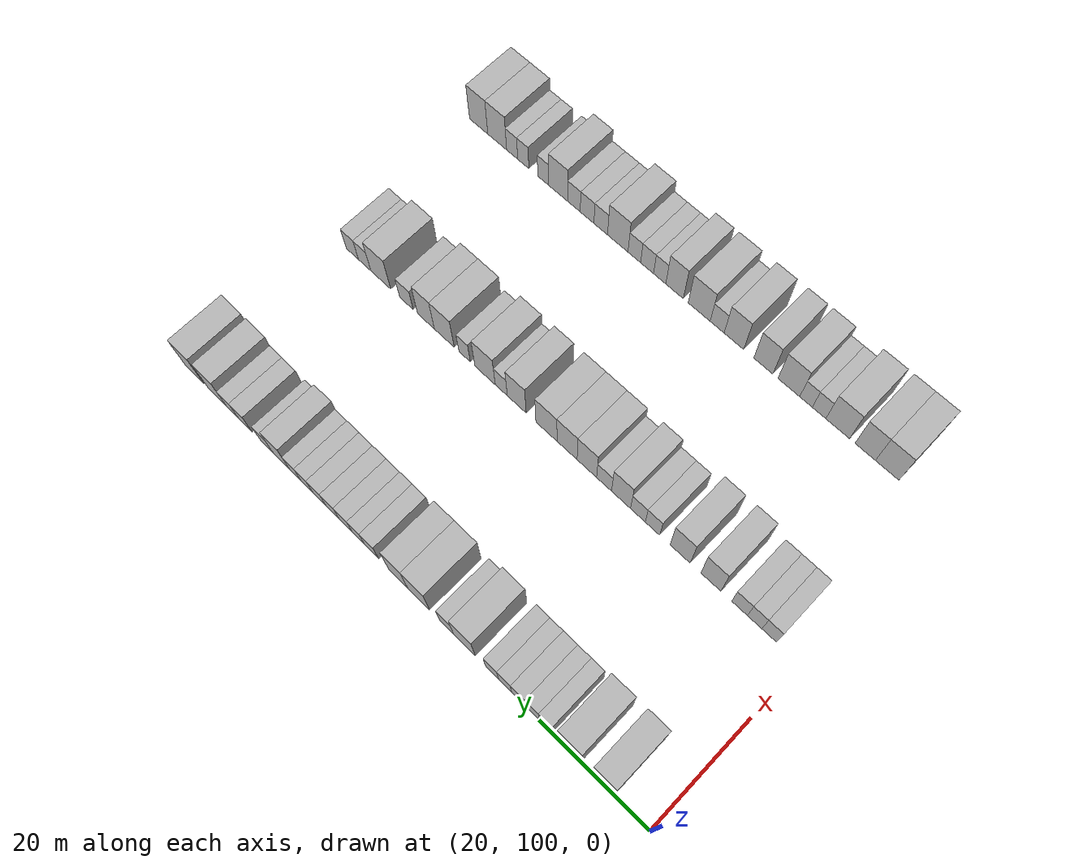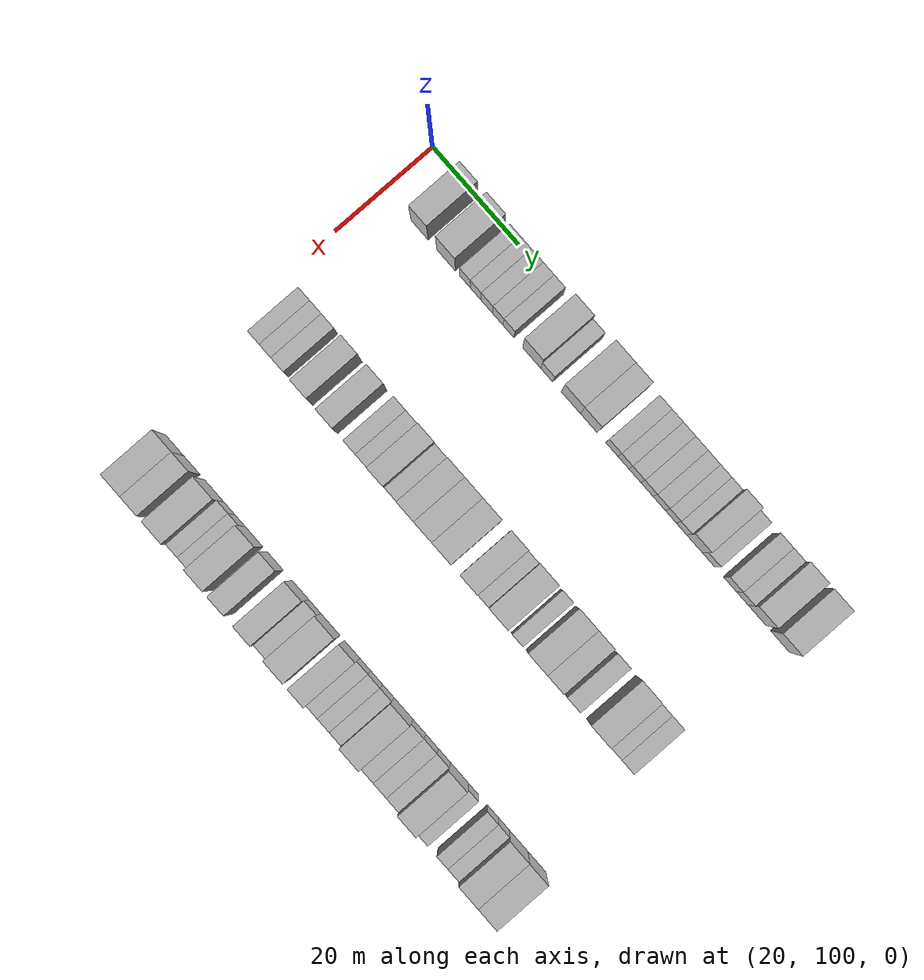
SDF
<sdf version="1.6">
 <world name="default">
  <model name="building_98">
   <static>1</static>
   <pose>25.0000 108.4100 0 0.000000 0.000000 0.000000</pose>
   <link name="link">
    <pose>0 0 4.50 0 0 0</pose>
    <collision name="collision"><geometry><box><size>10.0000 4.0163 9.0000</size></box></geometry></collision>
    <visual name="visual">
     <cast_shadows>0</cast_shadows>
     <geometry><box><size>10.0000 4.0163 9.0000</size></box></geometry>
     <material>
      <script>
       <uri>model://HANNAS_wall/materials/scripts</uri>
       <uri>model://HANNAS_wall/materials/textures</uri>
       <name>vrc/HANNAS_wall</name>
      </script>
     </material>
    </visual>
   </link>
  </model>
  <model name="building_99">
   <static>1</static>
   <pose>25.0000 114.5897 0 0.000000 0.000000 0.000000</pose>
   <link name="link">
    <pose>0 0 4.50 0 0 0</pose>
    <collision name="collision"><geometry><box><size>10.0000 4.3430 9.0000</size></box></geometry></collision>
    <visual name="visual">
     <cast_shadows>0</cast_shadows>
     <geometry><box><size>10.0000 4.3430 9.0000</size></box></geometry>
     <material>
      <script>
       <uri>model://HANNAS_wall/materials/scripts</uri>
       <uri>model://HANNAS_wall/materials/textures</uri>
       <name>vrc/HANNAS_wall</name>
      </script>
     </material>
    </visual>
   </link>
  </model>
  <model name="building_100">
   <static>1</static>
   <pose>25.0000 118.9897 0 0.000000 0.000000 0.000000</pose>
   <link name="link">
    <pose>0 0 3.00 0 0 0</pose>
    <collision name="collision"><geometry><box><size>10.0000 2.4570 6.0000</size></box></geometry></collision>
    <visual name="visual">
     <cast_shadows>0</cast_shadows>
     <geometry><box><size>10.0000 2.4570 6.0000</size></box></geometry>
     <material>
      <script>
       <uri>model://HANNAS_wall/materials/scripts</uri>
       <uri>model://HANNAS_wall/materials/textures</uri>
       <name>vrc/HANNAS_wall</name>
      </script>
     </material>
    </visual>
   </link>
  </model>
  <model name="building_101">
   <static>1</static>
   <pose>25.0000 121.4669 0 0.000000 0.000000 0.000000</pose>
   <link name="link">
    <pose>0 0 3.00 0 0 0</pose>
    <collision name="collision"><geometry><box><size>10.0000 2.4974 6.0000</size></box></geometry></collision>
    <visual name="visual">
     <cast_shadows>0</cast_shadows>
     <geometry><box><size>10.0000 2.4974 6.0000</size></box></geometry>
     <material>
      <script>
       <uri>model://HANNAS_wall/materials/scripts</uri>
       <uri>model://HANNAS_wall/materials/textures</uri>
       <name>vrc/HANNAS_wall</name>
      </script>
     </material>
    </visual>
   </link>
  </model>
  <model name="building_102">
   <static>1</static>
   <pose>25.0000 124.0393 0 0.000000 0.000000 0.000000</pose>
   <link name="link">
    <pose>0 0 3.00 0 0 0</pose>
    <collision name="collision"><geometry><box><size>10.0000 2.6474 6.0000</size></box></geometry></collision>
    <visual name="visual">
     <cast_shadows>0</cast_shadows>
     <geometry><box><size>10.0000 2.6474 6.0000</size></box></geometry>
     <material>
      <script>
       <uri>model://HANNAS_wall/materials/scripts</uri>
       <uri>model://HANNAS_wall/materials/textures</uri>
       <name>vrc/HANNAS_wall</name>
      </script>
     </material>
    </visual>
   </link>
  </model>
  <model name="building_103">
   <static>1</static>
   <pose>25.0000 126.6178 0 0.000000 0.000000 0.000000</pose>
   <link name="link">
    <pose>0 0 3.00 0 0 0</pose>
    <collision name="collision"><geometry><box><size>10.0000 2.5097 6.0000</size></box></geometry></collision>
    <visual name="visual">
     <cast_shadows>0</cast_shadows>
     <geometry><box><size>10.0000 2.5097 6.0000</size></box></geometry>
     <material>
      <script>
       <uri>model://HANNAS_wall/materials/scripts</uri>
       <uri>model://HANNAS_wall/materials/textures</uri>
       <name>vrc/HANNAS_wall</name>
      </script>
     </material>
    </visual>
   </link>
  </model>
  <model name="building_104">
   <static>1</static>
   <pose>25.0000 129.1347 0 0.000000 0.000000 0.000000</pose>
   <link name="link">
    <pose>0 0 3.00 0 0 0</pose>
    <collision name="collision"><geometry><box><size>10.0000 2.5240 6.0000</size></box></geometry></collision>
    <visual name="visual">
     <cast_shadows>0</cast_shadows>
     <geometry><box><size>10.0000 2.5240 6.0000</size></box></geometry>
     <material>
      <script>
       <uri>model://HANNAS_wall/materials/scripts</uri>
       <uri>model://HANNAS_wall/materials/textures</uri>
       <name>vrc/HANNAS_wall</name>
      </script>
     </material>
    </visual>
   </link>
  </model>
  <model name="building_105">
   <static>1</static>
   <pose>25.0000 134.5163 0 0.000000 0.000000 0.000000</pose>
   <link name="link">
    <pose>0 0 4.50 0 0 0</pose>
    <collision name="collision"><geometry><box><size>10.0000 4.2393 9.0000</size></box></geometry></collision>
    <visual name="visual">
     <cast_shadows>0</cast_shadows>
     <geometry><box><size>10.0000 4.2393 9.0000</size></box></geometry>
     <material>
      <script>
       <uri>model://HANNAS_wall/materials/scripts</uri>
       <uri>model://HANNAS_wall/materials/textures</uri>
       <name>vrc/HANNAS_wall</name>
      </script>
     </material>
    </visual>
   </link>
  </model>
  <model name="building_106">
   <static>1</static>
   <pose>25.0000 138.0238 0 0.000000 0.000000 0.000000</pose>
   <link name="link">
    <pose>0 0 3.00 0 0 0</pose>
    <collision name="collision"><geometry><box><size>10.0000 2.7756 6.0000</size></box></geometry></collision>
    <visual name="visual">
     <cast_shadows>0</cast_shadows>
     <geometry><box><size>10.0000 2.7756 6.0000</size></box></geometry>
     <material>
      <script>
       <uri>model://HANNAS_wall/materials/scripts</uri>
       <uri>model://HANNAS_wall/materials/textures</uri>
       <name>vrc/HANNAS_wall</name>
      </script>
     </material>
    </visual>
   </link>
  </model>
  <model name="building_107">
   <static>1</static>
   <pose>25.0000 143.6234 0 0.000000 0.000000 0.000000</pose>
   <link name="link">
    <pose>0 0 4.50 0 0 0</pose>
    <collision name="collision"><geometry><box><size>10.0000 4.4236 9.0000</size></box></geometry></collision>
    <visual name="visual">
     <cast_shadows>0</cast_shadows>
     <geometry><box><size>10.0000 4.4236 9.0000</size></box></geometry>
     <material>
      <script>
       <uri>model://HANNAS_wall/materials/scripts</uri>
       <uri>model://HANNAS_wall/materials/textures</uri>
       <name>vrc/HANNAS_wall</name>
      </script>
     </material>
    </visual>
   </link>
  </model>
  <model name="building_108">
   <static>1</static>
   <pose>25.0000 147.7853 0 0.000000 0.000000 0.000000</pose>
   <link name="link">
    <pose>0 0 4.50 0 0 0</pose>
    <collision name="collision"><geometry><box><size>10.0000 3.9002 9.0000</size></box></geometry></collision>
    <visual name="visual">
     <cast_shadows>0</cast_shadows>
     <geometry><box><size>10.0000 3.9002 9.0000</size></box></geometry>
     <material>
      <script>
       <uri>model://HANNAS_wall/materials/scripts</uri>
       <uri>model://HANNAS_wall/materials/textures</uri>
       <name>vrc/HANNAS_wall</name>
      </script>
     </material>
    </visual>
   </link>
  </model>
  <model name="building_109">
   <static>1</static>
   <pose>25.0000 153.1432 0 0.000000 0.000000 0.000000</pose>
   <link name="link">
    <pose>0 0 3.00 0 0 0</pose>
    <collision name="collision"><geometry><box><size>10.0000 2.8157 6.0000</size></box></geometry></collision>
    <visual name="visual">
     <cast_shadows>0</cast_shadows>
     <geometry><box><size>10.0000 2.8157 6.0000</size></box></geometry>
     <material>
      <script>
       <uri>model://HANNAS_wall/materials/scripts</uri>
       <uri>model://HANNAS_wall/materials/textures</uri>
       <name>vrc/HANNAS_wall</name>
      </script>
     </material>
    </visual>
   </link>
  </model>
  <model name="building_110">
   <static>1</static>
   <pose>25.0000 155.8075 0 0.000000 0.000000 0.000000</pose>
   <link name="link">
    <pose>0 0 3.00 0 0 0</pose>
    <collision name="collision"><geometry><box><size>10.0000 2.5129 6.0000</size></box></geometry></collision>
    <visual name="visual">
     <cast_shadows>0</cast_shadows>
     <geometry><box><size>10.0000 2.5129 6.0000</size></box></geometry>
     <material>
      <script>
       <uri>model://HANNAS_wall/materials/scripts</uri>
       <uri>model://HANNAS_wall/materials/textures</uri>
       <name>vrc/HANNAS_wall</name>
      </script>
     </material>
    </visual>
   </link>
  </model>
  <model name="building_111">
   <static>1</static>
   <pose>25.0000 158.4557 0 0.000000 0.000000 0.000000</pose>
   <link name="link">
    <pose>0 0 3.00 0 0 0</pose>
    <collision name="collision"><geometry><box><size>10.0000 2.7835 6.0000</size></box></geometry></collision>
    <visual name="visual">
     <cast_shadows>0</cast_shadows>
     <geometry><box><size>10.0000 2.7835 6.0000</size></box></geometry>
     <material>
      <script>
       <uri>model://HANNAS_wall/materials/scripts</uri>
       <uri>model://HANNAS_wall/materials/textures</uri>
       <name>vrc/HANNAS_wall</name>
      </script>
     </material>
    </visual>
   </link>
  </model>
  <model name="building_112">
   <static>1</static>
   <pose>25.0000 161.2477 0 0.000000 0.000000 0.000000</pose>
   <link name="link">
    <pose>0 0 3.00 0 0 0</pose>
    <collision name="collision"><geometry><box><size>10.0000 2.8004 6.0000</size></box></geometry></collision>
    <visual name="visual">
     <cast_shadows>0</cast_shadows>
     <geometry><box><size>10.0000 2.8004 6.0000</size></box></geometry>
     <material>
      <script>
       <uri>model://HANNAS_wall/materials/scripts</uri>
       <uri>model://HANNAS_wall/materials/textures</uri>
       <name>vrc/HANNAS_wall</name>
      </script>
     </material>
    </visual>
   </link>
  </model>
  <model name="building_113">
   <static>1</static>
   <pose>25.0000 164.0514 0 0.000000 0.000000 0.000000</pose>
   <link name="link">
    <pose>0 0 3.00 0 0 0</pose>
    <collision name="collision"><geometry><box><size>10.0000 2.8071 6.0000</size></box></geometry></collision>
    <visual name="visual">
     <cast_shadows>0</cast_shadows>
     <geometry><box><size>10.0000 2.8071 6.0000</size></box></geometry>
     <material>
      <script>
       <uri>model://HANNAS_wall/materials/scripts</uri>
       <uri>model://HANNAS_wall/materials/textures</uri>
       <name>vrc/HANNAS_wall</name>
      </script>
     </material>
    </visual>
   </link>
  </model>
  <model name="building_114">
   <static>1</static>
   <pose>25.0000 166.7304 0 0.000000 0.000000 0.000000</pose>
   <link name="link">
    <pose>0 0 3.00 0 0 0</pose>
    <collision name="collision"><geometry><box><size>10.0000 2.5507 6.0000</size></box></geometry></collision>
    <visual name="visual">
     <cast_shadows>0</cast_shadows>
     <geometry><box><size>10.0000 2.5507 6.0000</size></box></geometry>
     <material>
      <script>
       <uri>model://HANNAS_wall/materials/scripts</uri>
       <uri>model://HANNAS_wall/materials/textures</uri>
       <name>vrc/HANNAS_wall</name>
      </script>
     </material>
    </visual>
   </link>
  </model>
  <model name="building_115">
   <static>1</static>
   <pose>25.0000 169.2499 0 0.000000 0.000000 0.000000</pose>
   <link name="link">
    <pose>0 0 3.00 0 0 0</pose>
    <collision name="collision"><geometry><box><size>10.0000 2.4883 6.0000</size></box></geometry></collision>
    <visual name="visual">
     <cast_shadows>0</cast_shadows>
     <geometry><box><size>10.0000 2.4883 6.0000</size></box></geometry>
     <material>
      <script>
       <uri>model://HANNAS_wall/materials/scripts</uri>
       <uri>model://HANNAS_wall/materials/textures</uri>
       <name>vrc/HANNAS_wall</name>
      </script>
     </material>
    </visual>
   </link>
  </model>
  <model name="building_116">
   <static>1</static>
   <pose>25.0000 172.3284 0 0.000000 0.000000 0.000000</pose>
   <link name="link">
    <pose>0 0 4.50 0 0 0</pose>
    <collision name="collision"><geometry><box><size>10.0000 3.6687 9.0000</size></box></geometry></collision>
    <visual name="visual">
     <cast_shadows>0</cast_shadows>
     <geometry><box><size>10.0000 3.6687 9.0000</size></box></geometry>
     <material>
      <script>
       <uri>model://HANNAS_wall/materials/scripts</uri>
       <uri>model://HANNAS_wall/materials/textures</uri>
       <name>vrc/HANNAS_wall</name>
      </script>
     </material>
    </visual>
   </link>
  </model>
  <model name="building_117">
   <static>1</static>
   <pose>25.0000 175.5758 0 0.000000 0.000000 0.000000</pose>
   <link name="link">
    <pose>0 0 3.00 0 0 0</pose>
    <collision name="collision"><geometry><box><size>10.0000 2.8261 6.0000</size></box></geometry></collision>
    <visual name="visual">
     <cast_shadows>0</cast_shadows>
     <geometry><box><size>10.0000 2.8261 6.0000</size></box></geometry>
     <material>
      <script>
       <uri>model://HANNAS_wall/materials/scripts</uri>
       <uri>model://HANNAS_wall/materials/textures</uri>
       <name>vrc/HANNAS_wall</name>
      </script>
     </material>
    </visual>
   </link>
  </model>
  <model name="building_118">
   <static>1</static>
   <pose>25.0000 180.4867 0 0.000000 0.000000 0.000000</pose>
   <link name="link">
    <pose>0 0 3.00 0 0 0</pose>
    <collision name="collision"><geometry><box><size>10.0000 2.9957 6.0000</size></box></geometry></collision>
    <visual name="visual">
     <cast_shadows>0</cast_shadows>
     <geometry><box><size>10.0000 2.9957 6.0000</size></box></geometry>
     <material>
      <script>
       <uri>model://HANNAS_wall/materials/scripts</uri>
       <uri>model://HANNAS_wall/materials/textures</uri>
       <name>vrc/HANNAS_wall</name>
      </script>
     </material>
    </visual>
   </link>
  </model>
  <model name="building_119">
   <static>1</static>
   <pose>25.0000 183.3194 0 0.000000 0.000000 0.000000</pose>
   <link name="link">
    <pose>0 0 3.00 0 0 0</pose>
    <collision name="collision"><geometry><box><size>10.0000 2.6698 6.0000</size></box></geometry></collision>
    <visual name="visual">
     <cast_shadows>0</cast_shadows>
     <geometry><box><size>10.0000 2.6698 6.0000</size></box></geometry>
     <material>
      <script>
       <uri>model://HANNAS_wall/materials/scripts</uri>
       <uri>model://HANNAS_wall/materials/textures</uri>
       <name>vrc/HANNAS_wall</name>
      </script>
     </material>
    </visual>
   </link>
  </model>
  <model name="building_120">
   <static>1</static>
   <pose>25.0000 186.7675 0 0.000000 0.000000 0.000000</pose>
   <link name="link">
    <pose>0 0 4.50 0 0 0</pose>
    <collision name="collision"><geometry><box><size>10.0000 4.2265 9.0000</size></box></geometry></collision>
    <visual name="visual">
     <cast_shadows>0</cast_shadows>
     <geometry><box><size>10.0000 4.2265 9.0000</size></box></geometry>
     <material>
      <script>
       <uri>model://HANNAS_wall/materials/scripts</uri>
       <uri>model://HANNAS_wall/materials/textures</uri>
       <name>vrc/HANNAS_wall</name>
      </script>
     </material>
    </visual>
   </link>
  </model>
  <model name="building_121">
   <static>1</static>
   <pose>25.0000 192.0727 0 0.000000 0.000000 0.000000</pose>
   <link name="link">
    <pose>0 0 4.50 0 0 0</pose>
    <collision name="collision"><geometry><box><size>10.0000 4.3840 9.0000</size></box></geometry></collision>
    <visual name="visual">
     <cast_shadows>0</cast_shadows>
     <geometry><box><size>10.0000 4.3840 9.0000</size></box></geometry>
     <material>
      <script>
       <uri>model://HANNAS_wall/materials/scripts</uri>
       <uri>model://HANNAS_wall/materials/textures</uri>
       <name>vrc/HANNAS_wall</name>
      </script>
     </material>
    </visual>
   </link>
  </model>
  <model name="building_232">
   <static>1</static>
   <pose>55.0000 105.4134 0 0.000000 0.000000 0.000000</pose>
   <link name="link">
    <pose>0 0 3.00 0 0 0</pose>
    <collision name="collision"><geometry><box><size>10.0000 2.6427 6.0000</size></box></geometry></collision>
    <visual name="visual">
     <cast_shadows>0</cast_shadows>
     <geometry><box><size>10.0000 2.6427 6.0000</size></box></geometry>
     <material>
      <script>
       <uri>model://HANNAS_wall/materials/scripts</uri>
       <uri>model://HANNAS_wall/materials/textures</uri>
       <name>vrc/HANNAS_wall</name>
      </script>
     </material>
    </visual>
   </link>
  </model>
  <model name="building_233">
   <static>1</static>
   <pose>55.0000 108.0498 0 0.000000 0.000000 0.000000</pose>
   <link name="link">
    <pose>0 0 3.00 0 0 0</pose>
    <collision name="collision"><geometry><box><size>10.0000 2.6302 6.0000</size></box></geometry></collision>
    <visual name="visual">
     <cast_shadows>0</cast_shadows>
     <geometry><box><size>10.0000 2.6302 6.0000</size></box></geometry>
     <material>
      <script>
       <uri>model://HANNAS_wall/materials/scripts</uri>
       <uri>model://HANNAS_wall/materials/textures</uri>
       <name>vrc/HANNAS_wall</name>
      </script>
     </material>
    </visual>
   </link>
  </model>
  <model name="building_234">
   <static>1</static>
   <pose>55.0000 110.8013 0 0.000000 0.000000 0.000000</pose>
   <link name="link">
    <pose>0 0 3.00 0 0 0</pose>
    <collision name="collision"><geometry><box><size>10.0000 2.8726 6.0000</size></box></geometry></collision>
    <visual name="visual">
     <cast_shadows>0</cast_shadows>
     <geometry><box><size>10.0000 2.8726 6.0000</size></box></geometry>
     <material>
      <script>
       <uri>model://HANNAS_wall/materials/scripts</uri>
       <uri>model://HANNAS_wall/materials/textures</uri>
       <name>vrc/HANNAS_wall</name>
      </script>
     </material>
    </visual>
   </link>
  </model>
  <model name="building_235">
   <static>1</static>
   <pose>55.0000 116.0993 0 0.000000 0.000000 0.000000</pose>
   <link name="link">
    <pose>0 0 4.50 0 0 0</pose>
    <collision name="collision"><geometry><box><size>10.0000 3.7235 9.0000</size></box></geometry></collision>
    <visual name="visual">
     <cast_shadows>0</cast_shadows>
     <geometry><box><size>10.0000 3.7235 9.0000</size></box></geometry>
     <material>
      <script>
       <uri>model://HANNAS_wall/materials/scripts</uri>
       <uri>model://HANNAS_wall/materials/textures</uri>
       <name>vrc/HANNAS_wall</name>
      </script>
     </material>
    </visual>
   </link>
  </model>
  <model name="building_236">
   <static>1</static>
   <pose>55.0000 121.8579 0 0.000000 0.000000 0.000000</pose>
   <link name="link">
    <pose>0 0 4.50 0 0 0</pose>
    <collision name="collision"><geometry><box><size>10.0000 3.7937 9.0000</size></box></geometry></collision>
    <visual name="visual">
     <cast_shadows>0</cast_shadows>
     <geometry><box><size>10.0000 3.7937 9.0000</size></box></geometry>
     <material>
      <script>
       <uri>model://HANNAS_wall/materials/scripts</uri>
       <uri>model://HANNAS_wall/materials/textures</uri>
       <name>vrc/HANNAS_wall</name>
      </script>
     </material>
    </visual>
   </link>
  </model>
  <model name="building_237">
   <static>1</static>
   <pose>55.0000 127.1407 0 0.000000 0.000000 0.000000</pose>
   <link name="link">
    <pose>0 0 3.00 0 0 0</pose>
    <collision name="collision"><geometry><box><size>10.0000 2.7717 6.0000</size></box></geometry></collision>
    <visual name="visual">
     <cast_shadows>0</cast_shadows>
     <geometry><box><size>10.0000 2.7717 6.0000</size></box></geometry>
     <material>
      <script>
       <uri>model://HANNAS_wall/materials/scripts</uri>
       <uri>model://HANNAS_wall/materials/textures</uri>
       <name>vrc/HANNAS_wall</name>
      </script>
     </material>
    </visual>
   </link>
  </model>
  <model name="building_238">
   <static>1</static>
   <pose>55.0000 129.9576 0 0.000000 0.000000 0.000000</pose>
   <link name="link">
    <pose>0 0 3.00 0 0 0</pose>
    <collision name="collision"><geometry><box><size>10.0000 2.8621 6.0000</size></box></geometry></collision>
    <visual name="visual">
     <cast_shadows>0</cast_shadows>
     <geometry><box><size>10.0000 2.8621 6.0000</size></box></geometry>
     <material>
      <script>
       <uri>model://HANNAS_wall/materials/scripts</uri>
       <uri>model://HANNAS_wall/materials/textures</uri>
       <name>vrc/HANNAS_wall</name>
      </script>
     </material>
    </visual>
   </link>
  </model>
  <model name="building_239">
   <static>1</static>
   <pose>55.0000 133.2480 0 0.000000 0.000000 0.000000</pose>
   <link name="link">
    <pose>0 0 4.50 0 0 0</pose>
    <collision name="collision"><geometry><box><size>10.0000 3.7188 9.0000</size></box></geometry></collision>
    <visual name="visual">
     <cast_shadows>0</cast_shadows>
     <geometry><box><size>10.0000 3.7188 9.0000</size></box></geometry>
     <material>
      <script>
       <uri>model://HANNAS_wall/materials/scripts</uri>
       <uri>model://HANNAS_wall/materials/textures</uri>
       <name>vrc/HANNAS_wall</name>
      </script>
     </material>
    </visual>
   </link>
  </model>
  <model name="building_240">
   <static>1</static>
   <pose>55.0000 136.5853 0 0.000000 0.000000 0.000000</pose>
   <link name="link">
    <pose>0 0 3.00 0 0 0</pose>
    <collision name="collision"><geometry><box><size>10.0000 2.9558 6.0000</size></box></geometry></collision>
    <visual name="visual">
     <cast_shadows>0</cast_shadows>
     <geometry><box><size>10.0000 2.9558 6.0000</size></box></geometry>
     <material>
      <script>
       <uri>model://HANNAS_wall/materials/scripts</uri>
       <uri>model://HANNAS_wall/materials/textures</uri>
       <name>vrc/HANNAS_wall</name>
      </script>
     </material>
    </visual>
   </link>
  </model>
  <model name="building_241">
   <static>1</static>
   <pose>55.0000 140.0075 0 0.000000 0.000000 0.000000</pose>
   <link name="link">
    <pose>0 0 4.50 0 0 0</pose>
    <collision name="collision"><geometry><box><size>10.0000 3.8885 9.0000</size></box></geometry></collision>
    <visual name="visual">
     <cast_shadows>0</cast_shadows>
     <geometry><box><size>10.0000 3.8885 9.0000</size></box></geometry>
     <material>
      <script>
       <uri>model://HANNAS_wall/materials/scripts</uri>
       <uri>model://HANNAS_wall/materials/textures</uri>
       <name>vrc/HANNAS_wall</name>
      </script>
     </material>
    </visual>
   </link>
  </model>
  <model name="building_242">
   <static>1</static>
   <pose>55.0000 143.9833 0 0.000000 0.000000 0.000000</pose>
   <link name="link">
    <pose>0 0 4.50 0 0 0</pose>
    <collision name="collision"><geometry><box><size>10.0000 4.0633 9.0000</size></box></geometry></collision>
    <visual name="visual">
     <cast_shadows>0</cast_shadows>
     <geometry><box><size>10.0000 4.0633 9.0000</size></box></geometry>
     <material>
      <script>
       <uri>model://HANNAS_wall/materials/scripts</uri>
       <uri>model://HANNAS_wall/materials/textures</uri>
       <name>vrc/HANNAS_wall</name>
      </script>
     </material>
    </visual>
   </link>
  </model>
  <model name="building_243">
   <static>1</static>
   <pose>55.0000 148.1698 0 0.000000 0.000000 0.000000</pose>
   <link name="link">
    <pose>0 0 4.50 0 0 0</pose>
    <collision name="collision"><geometry><box><size>10.0000 4.3097 9.0000</size></box></geometry></collision>
    <visual name="visual">
     <cast_shadows>0</cast_shadows>
     <geometry><box><size>10.0000 4.3097 9.0000</size></box></geometry>
     <material>
      <script>
       <uri>model://HANNAS_wall/materials/scripts</uri>
       <uri>model://HANNAS_wall/materials/textures</uri>
       <name>vrc/HANNAS_wall</name>
      </script>
     </material>
    </visual>
   </link>
  </model>
  <model name="building_244">
   <static>1</static>
   <pose>55.0000 154.2860 0 0.000000 0.000000 0.000000</pose>
   <link name="link">
    <pose>0 0 4.50 0 0 0</pose>
    <collision name="collision"><geometry><box><size>10.0000 3.9227 9.0000</size></box></geometry></collision>
    <visual name="visual">
     <cast_shadows>0</cast_shadows>
     <geometry><box><size>10.0000 3.9227 9.0000</size></box></geometry>
     <material>
      <script>
       <uri>model://HANNAS_wall/materials/scripts</uri>
       <uri>model://HANNAS_wall/materials/textures</uri>
       <name>vrc/HANNAS_wall</name>
      </script>
     </material>
    </visual>
   </link>
  </model>
  <model name="building_245">
   <static>1</static>
   <pose>55.0000 157.5115 0 0.000000 0.000000 0.000000</pose>
   <link name="link">
    <pose>0 0 3.00 0 0 0</pose>
    <collision name="collision"><geometry><box><size>10.0000 2.5282 6.0000</size></box></geometry></collision>
    <visual name="visual">
     <cast_shadows>0</cast_shadows>
     <geometry><box><size>10.0000 2.5282 6.0000</size></box></geometry>
     <material>
      <script>
       <uri>model://HANNAS_wall/materials/scripts</uri>
       <uri>model://HANNAS_wall/materials/textures</uri>
       <name>vrc/HANNAS_wall</name>
      </script>
     </material>
    </visual>
   </link>
  </model>
  <model name="building_246">
   <static>1</static>
   <pose>55.0000 160.9273 0 0.000000 0.000000 0.000000</pose>
   <link name="link">
    <pose>0 0 4.50 0 0 0</pose>
    <collision name="collision"><geometry><box><size>10.0000 4.3035 9.0000</size></box></geometry></collision>
    <visual name="visual">
     <cast_shadows>0</cast_shadows>
     <geometry><box><size>10.0000 4.3035 9.0000</size></box></geometry>
     <material>
      <script>
       <uri>model://HANNAS_wall/materials/scripts</uri>
       <uri>model://HANNAS_wall/materials/textures</uri>
       <name>vrc/HANNAS_wall</name>
      </script>
     </material>
    </visual>
   </link>
  </model>
  <model name="building_247">
   <static>1</static>
   <pose>55.0000 165.2969 0 0.000000 0.000000 0.000000</pose>
   <link name="link">
    <pose>0 0 3.00 0 0 0</pose>
    <collision name="collision"><geometry><box><size>10.0000 2.4358 6.0000</size></box></geometry></collision>
    <visual name="visual">
     <cast_shadows>0</cast_shadows>
     <geometry><box><size>10.0000 2.4358 6.0000</size></box></geometry>
     <material>
      <script>
       <uri>model://HANNAS_wall/materials/scripts</uri>
       <uri>model://HANNAS_wall/materials/textures</uri>
       <name>vrc/HANNAS_wall</name>
      </script>
     </material>
    </visual>
   </link>
  </model>
  <model name="building_248">
   <static>1</static>
   <pose>55.0000 169.6730 0 0.000000 0.000000 0.000000</pose>
   <link name="link">
    <pose>0 0 4.50 0 0 0</pose>
    <collision name="collision"><geometry><box><size>10.0000 4.3163 9.0000</size></box></geometry></collision>
    <visual name="visual">
     <cast_shadows>0</cast_shadows>
     <geometry><box><size>10.0000 4.3163 9.0000</size></box></geometry>
     <material>
      <script>
       <uri>model://HANNAS_wall/materials/scripts</uri>
       <uri>model://HANNAS_wall/materials/textures</uri>
       <name>vrc/HANNAS_wall</name>
      </script>
     </material>
    </visual>
   </link>
  </model>
  <model name="building_249">
   <static>1</static>
   <pose>55.0000 173.6691 0 0.000000 0.000000 0.000000</pose>
   <link name="link">
    <pose>0 0 4.50 0 0 0</pose>
    <collision name="collision"><geometry><box><size>10.0000 3.6759 9.0000</size></box></geometry></collision>
    <visual name="visual">
     <cast_shadows>0</cast_shadows>
     <geometry><box><size>10.0000 3.6759 9.0000</size></box></geometry>
     <material>
      <script>
       <uri>model://HANNAS_wall/materials/scripts</uri>
       <uri>model://HANNAS_wall/materials/textures</uri>
       <name>vrc/HANNAS_wall</name>
      </script>
     </material>
    </visual>
   </link>
  </model>
  <model name="building_250">
   <static>1</static>
   <pose>55.0000 178.0054 0 0.000000 0.000000 0.000000</pose>
   <link name="link">
    <pose>0 0 3.00 0 0 0</pose>
    <collision name="collision"><geometry><box><size>10.0000 2.9967 6.0000</size></box></geometry></collision>
    <visual name="visual">
     <cast_shadows>0</cast_shadows>
     <geometry><box><size>10.0000 2.9967 6.0000</size></box></geometry>
     <material>
      <script>
       <uri>model://HANNAS_wall/materials/scripts</uri>
       <uri>model://HANNAS_wall/materials/textures</uri>
       <name>vrc/HANNAS_wall</name>
      </script>
     </material>
    </visual>
   </link>
  </model>
  <model name="building_251">
   <static>1</static>
   <pose>55.0000 183.7398 0 0.000000 0.000000 0.000000</pose>
   <link name="link">
    <pose>0 0 4.50 0 0 0</pose>
    <collision name="collision"><geometry><box><size>10.0000 4.4720 9.0000</size></box></geometry></collision>
    <visual name="visual">
     <cast_shadows>0</cast_shadows>
     <geometry><box><size>10.0000 4.4720 9.0000</size></box></geometry>
     <material>
      <script>
       <uri>model://HANNAS_wall/materials/scripts</uri>
       <uri>model://HANNAS_wall/materials/textures</uri>
       <name>vrc/HANNAS_wall</name>
      </script>
     </material>
    </visual>
   </link>
  </model>
  <model name="building_252">
   <static>1</static>
   <pose>55.0000 187.3816 0 0.000000 0.000000 0.000000</pose>
   <link name="link">
    <pose>0 0 3.00 0 0 0</pose>
    <collision name="collision"><geometry><box><size>10.0000 2.8116 6.0000</size></box></geometry></collision>
    <visual name="visual">
     <cast_shadows>0</cast_shadows>
     <geometry><box><size>10.0000 2.8116 6.0000</size></box></geometry>
     <material>
      <script>
       <uri>model://HANNAS_wall/materials/scripts</uri>
       <uri>model://HANNAS_wall/materials/textures</uri>
       <name>vrc/HANNAS_wall</name>
      </script>
     </material>
    </visual>
   </link>
  </model>
  <model name="building_253">
   <static>1</static>
   <pose>55.0000 190.1786 0 0.000000 0.000000 0.000000</pose>
   <link name="link">
    <pose>0 0 3.00 0 0 0</pose>
    <collision name="collision"><geometry><box><size>10.0000 2.7824 6.0000</size></box></geometry></collision>
    <visual name="visual">
     <cast_shadows>0</cast_shadows>
     <geometry><box><size>10.0000 2.7824 6.0000</size></box></geometry>
     <material>
      <script>
       <uri>model://HANNAS_wall/materials/scripts</uri>
       <uri>model://HANNAS_wall/materials/textures</uri>
       <name>vrc/HANNAS_wall</name>
      </script>
     </material>
    </visual>
   </link>
  </model>
  <model name="building_373">
   <static>1</static>
   <pose>85.0000 108.6759 0 0.000000 0.000000 0.000000</pose>
   <link name="link">
    <pose>0 0 4.50 0 0 0</pose>
    <collision name="collision"><geometry><box><size>10.0000 4.3228 9.0000</size></box></geometry></collision>
    <visual name="visual">
     <cast_shadows>0</cast_shadows>
     <geometry><box><size>10.0000 4.3228 9.0000</size></box></geometry>
     <material>
      <script>
       <uri>model://HANNAS_wall/materials/scripts</uri>
       <uri>model://HANNAS_wall/materials/textures</uri>
       <name>vrc/HANNAS_wall</name>
      </script>
     </material>
    </visual>
   </link>
  </model>
  <model name="building_374">
   <static>1</static>
   <pose>85.0000 112.7326 0 0.000000 0.000000 0.000000</pose>
   <link name="link">
    <pose>0 0 4.50 0 0 0</pose>
    <collision name="collision"><geometry><box><size>10.0000 3.7906 9.0000</size></box></geometry></collision>
    <visual name="visual">
     <cast_shadows>0</cast_shadows>
     <geometry><box><size>10.0000 3.7906 9.0000</size></box></geometry>
     <material>
      <script>
       <uri>model://HANNAS_wall/materials/scripts</uri>
       <uri>model://HANNAS_wall/materials/textures</uri>
       <name>vrc/HANNAS_wall</name>
      </script>
     </material>
    </visual>
   </link>
  </model>
  <model name="building_375">
   <static>1</static>
   <pose>85.0000 117.8710 0 0.000000 0.000000 0.000000</pose>
   <link name="link">
    <pose>0 0 4.50 0 0 0</pose>
    <collision name="collision"><geometry><box><size>10.0000 4.4860 9.0000</size></box></geometry></collision>
    <visual name="visual">
     <cast_shadows>0</cast_shadows>
     <geometry><box><size>10.0000 4.4860 9.0000</size></box></geometry>
     <material>
      <script>
       <uri>model://HANNAS_wall/materials/scripts</uri>
       <uri>model://HANNAS_wall/materials/textures</uri>
       <name>vrc/HANNAS_wall</name>
      </script>
     </material>
    </visual>
   </link>
  </model>
  <model name="building_376">
   <static>1</static>
   <pose>85.0000 121.4032 0 0.000000 0.000000 0.000000</pose>
   <link name="link">
    <pose>0 0 3.00 0 0 0</pose>
    <collision name="collision"><geometry><box><size>10.0000 2.5784 6.0000</size></box></geometry></collision>
    <visual name="visual">
     <cast_shadows>0</cast_shadows>
     <geometry><box><size>10.0000 2.5784 6.0000</size></box></geometry>
     <material>
      <script>
       <uri>model://HANNAS_wall/materials/scripts</uri>
       <uri>model://HANNAS_wall/materials/textures</uri>
       <name>vrc/HANNAS_wall</name>
      </script>
     </material>
    </visual>
   </link>
  </model>
  <model name="building_377">
   <static>1</static>
   <pose>85.0000 123.8988 0 0.000000 0.000000 0.000000</pose>
   <link name="link">
    <pose>0 0 3.00 0 0 0</pose>
    <collision name="collision"><geometry><box><size>10.0000 2.4129 6.0000</size></box></geometry></collision>
    <visual name="visual">
     <cast_shadows>0</cast_shadows>
     <geometry><box><size>10.0000 2.4129 6.0000</size></box></geometry>
     <material>
      <script>
       <uri>model://HANNAS_wall/materials/scripts</uri>
       <uri>model://HANNAS_wall/materials/textures</uri>
       <name>vrc/HANNAS_wall</name>
      </script>
     </material>
    </visual>
   </link>
  </model>
  <model name="building_378">
   <static>1</static>
   <pose>85.0000 127.2128 0 0.000000 0.000000 0.000000</pose>
   <link name="link">
    <pose>0 0 4.50 0 0 0</pose>
    <collision name="collision"><geometry><box><size>10.0000 4.2151 9.0000</size></box></geometry></collision>
    <visual name="visual">
     <cast_shadows>0</cast_shadows>
     <geometry><box><size>10.0000 4.2151 9.0000</size></box></geometry>
     <material>
      <script>
       <uri>model://HANNAS_wall/materials/scripts</uri>
       <uri>model://HANNAS_wall/materials/textures</uri>
       <name>vrc/HANNAS_wall</name>
      </script>
     </material>
    </visual>
   </link>
  </model>
  <model name="building_379">
   <static>1</static>
   <pose>85.0000 132.1893 0 0.000000 0.000000 0.000000</pose>
   <link name="link">
    <pose>0 0 4.50 0 0 0</pose>
    <collision name="collision"><geometry><box><size>10.0000 3.7380 9.0000</size></box></geometry></collision>
    <visual name="visual">
     <cast_shadows>0</cast_shadows>
     <geometry><box><size>10.0000 3.7380 9.0000</size></box></geometry>
     <material>
      <script>
       <uri>model://HANNAS_wall/materials/scripts</uri>
       <uri>model://HANNAS_wall/materials/textures</uri>
       <name>vrc/HANNAS_wall</name>
      </script>
     </material>
    </visual>
   </link>
  </model>
  <model name="building_380">
   <static>1</static>
   <pose>85.0000 138.0113 0 0.000000 0.000000 0.000000</pose>
   <link name="link">
    <pose>0 0 4.50 0 0 0</pose>
    <collision name="collision"><geometry><box><size>10.0000 3.9059 9.0000</size></box></geometry></collision>
    <visual name="visual">
     <cast_shadows>0</cast_shadows>
     <geometry><box><size>10.0000 3.9059 9.0000</size></box></geometry>
     <material>
      <script>
       <uri>model://HANNAS_wall/materials/scripts</uri>
       <uri>model://HANNAS_wall/materials/textures</uri>
       <name>vrc/HANNAS_wall</name>
      </script>
     </material>
    </visual>
   </link>
  </model>
  <model name="building_381">
   <static>1</static>
   <pose>85.0000 141.3735 0 0.000000 0.000000 0.000000</pose>
   <link name="link">
    <pose>0 0 3.00 0 0 0</pose>
    <collision name="collision"><geometry><box><size>10.0000 2.8185 6.0000</size></box></geometry></collision>
    <visual name="visual">
     <cast_shadows>0</cast_shadows>
     <geometry><box><size>10.0000 2.8185 6.0000</size></box></geometry>
     <material>
      <script>
       <uri>model://HANNAS_wall/materials/scripts</uri>
       <uri>model://HANNAS_wall/materials/textures</uri>
       <name>vrc/HANNAS_wall</name>
      </script>
     </material>
    </visual>
   </link>
  </model>
  <model name="building_382">
   <static>1</static>
   <pose>85.0000 145.0171 0 0.000000 0.000000 0.000000</pose>
   <link name="link">
    <pose>0 0 4.50 0 0 0</pose>
    <collision name="collision"><geometry><box><size>10.0000 4.4688 9.0000</size></box></geometry></collision>
    <visual name="visual">
     <cast_shadows>0</cast_shadows>
     <geometry><box><size>10.0000 4.4688 9.0000</size></box></geometry>
     <material>
      <script>
       <uri>model://HANNAS_wall/materials/scripts</uri>
       <uri>model://HANNAS_wall/materials/textures</uri>
       <name>vrc/HANNAS_wall</name>
      </script>
     </material>
    </visual>
   </link>
  </model>
  <model name="building_383">
   <static>1</static>
   <pose>85.0000 150.0609 0 0.000000 0.000000 0.000000</pose>
   <link name="link">
    <pose>0 0 4.50 0 0 0</pose>
    <collision name="collision"><geometry><box><size>10.0000 3.6188 9.0000</size></box></geometry></collision>
    <visual name="visual">
     <cast_shadows>0</cast_shadows>
     <geometry><box><size>10.0000 3.6188 9.0000</size></box></geometry>
     <material>
      <script>
       <uri>model://HANNAS_wall/materials/scripts</uri>
       <uri>model://HANNAS_wall/materials/textures</uri>
       <name>vrc/HANNAS_wall</name>
      </script>
     </material>
    </visual>
   </link>
  </model>
  <model name="building_384">
   <static>1</static>
   <pose>85.0000 153.1446 0 0.000000 0.000000 0.000000</pose>
   <link name="link">
    <pose>0 0 3.00 0 0 0</pose>
    <collision name="collision"><geometry><box><size>10.0000 2.5487 6.0000</size></box></geometry></collision>
    <visual name="visual">
     <cast_shadows>0</cast_shadows>
     <geometry><box><size>10.0000 2.5487 6.0000</size></box></geometry>
     <material>
      <script>
       <uri>model://HANNAS_wall/materials/scripts</uri>
       <uri>model://HANNAS_wall/materials/textures</uri>
       <name>vrc/HANNAS_wall</name>
      </script>
     </material>
    </visual>
   </link>
  </model>
  <model name="building_385">
   <static>1</static>
   <pose>85.0000 155.7793 0 0.000000 0.000000 0.000000</pose>
   <link name="link">
    <pose>0 0 3.00 0 0 0</pose>
    <collision name="collision"><geometry><box><size>10.0000 2.7207 6.0000</size></box></geometry></collision>
    <visual name="visual">
     <cast_shadows>0</cast_shadows>
     <geometry><box><size>10.0000 2.7207 6.0000</size></box></geometry>
     <material>
      <script>
       <uri>model://HANNAS_wall/materials/scripts</uri>
       <uri>model://HANNAS_wall/materials/textures</uri>
       <name>vrc/HANNAS_wall</name>
      </script>
     </material>
    </visual>
   </link>
  </model>
  <model name="building_386">
   <static>1</static>
   <pose>85.0000 158.4685 0 0.000000 0.000000 0.000000</pose>
   <link name="link">
    <pose>0 0 3.00 0 0 0</pose>
    <collision name="collision"><geometry><box><size>10.0000 2.6575 6.0000</size></box></geometry></collision>
    <visual name="visual">
     <cast_shadows>0</cast_shadows>
     <geometry><box><size>10.0000 2.6575 6.0000</size></box></geometry>
     <material>
      <script>
       <uri>model://HANNAS_wall/materials/scripts</uri>
       <uri>model://HANNAS_wall/materials/textures</uri>
       <name>vrc/HANNAS_wall</name>
      </script>
     </material>
    </visual>
   </link>
  </model>
  <model name="building_387">
   <static>1</static>
   <pose>85.0000 161.9795 0 0.000000 0.000000 0.000000</pose>
   <link name="link">
    <pose>0 0 4.50 0 0 0</pose>
    <collision name="collision"><geometry><box><size>10.0000 4.3645 9.0000</size></box></geometry></collision>
    <visual name="visual">
     <cast_shadows>0</cast_shadows>
     <geometry><box><size>10.0000 4.3645 9.0000</size></box></geometry>
     <material>
      <script>
       <uri>model://HANNAS_wall/materials/scripts</uri>
       <uri>model://HANNAS_wall/materials/textures</uri>
       <name>vrc/HANNAS_wall</name>
      </script>
     </material>
    </visual>
   </link>
  </model>
  <model name="building_388">
   <static>1</static>
   <pose>85.0000 165.6273 0 0.000000 0.000000 0.000000</pose>
   <link name="link">
    <pose>0 0 3.00 0 0 0</pose>
    <collision name="collision"><geometry><box><size>10.0000 2.9311 6.0000</size></box></geometry></collision>
    <visual name="visual">
     <cast_shadows>0</cast_shadows>
     <geometry><box><size>10.0000 2.9311 6.0000</size></box></geometry>
     <material>
      <script>
       <uri>model://HANNAS_wall/materials/scripts</uri>
       <uri>model://HANNAS_wall/materials/textures</uri>
       <name>vrc/HANNAS_wall</name>
      </script>
     </material>
    </visual>
   </link>
  </model>
  <model name="building_389">
   <static>1</static>
   <pose>85.0000 168.5760 0 0.000000 0.000000 0.000000</pose>
   <link name="link">
    <pose>0 0 3.00 0 0 0</pose>
    <collision name="collision"><geometry><box><size>10.0000 2.9664 6.0000</size></box></geometry></collision>
    <visual name="visual">
     <cast_shadows>0</cast_shadows>
     <geometry><box><size>10.0000 2.9664 6.0000</size></box></geometry>
     <material>
      <script>
       <uri>model://HANNAS_wall/materials/scripts</uri>
       <uri>model://HANNAS_wall/materials/textures</uri>
       <name>vrc/HANNAS_wall</name>
      </script>
     </material>
    </visual>
   </link>
  </model>
  <model name="building_390">
   <static>1</static>
   <pose>85.0000 171.4373 0 0.000000 0.000000 0.000000</pose>
   <link name="link">
    <pose>0 0 3.00 0 0 0</pose>
    <collision name="collision"><geometry><box><size>10.0000 2.7560 6.0000</size></box></geometry></collision>
    <visual name="visual">
     <cast_shadows>0</cast_shadows>
     <geometry><box><size>10.0000 2.7560 6.0000</size></box></geometry>
     <material>
      <script>
       <uri>model://HANNAS_wall/materials/scripts</uri>
       <uri>model://HANNAS_wall/materials/textures</uri>
       <name>vrc/HANNAS_wall</name>
      </script>
     </material>
    </visual>
   </link>
  </model>
  <model name="building_391">
   <static>1</static>
   <pose>85.0000 174.8946 0 0.000000 0.000000 0.000000</pose>
   <link name="link">
    <pose>0 0 4.50 0 0 0</pose>
    <collision name="collision"><geometry><box><size>10.0000 4.1587 9.0000</size></box></geometry></collision>
    <visual name="visual">
     <cast_shadows>0</cast_shadows>
     <geometry><box><size>10.0000 4.1587 9.0000</size></box></geometry>
     <material>
      <script>
       <uri>model://HANNAS_wall/materials/scripts</uri>
       <uri>model://HANNAS_wall/materials/textures</uri>
       <name>vrc/HANNAS_wall</name>
      </script>
     </material>
    </visual>
   </link>
  </model>
  <model name="building_392">
   <static>1</static>
   <pose>85.0000 178.1957 0 0.000000 0.000000 0.000000</pose>
   <link name="link">
    <pose>0 0 3.00 0 0 0</pose>
    <collision name="collision"><geometry><box><size>10.0000 2.4434 6.0000</size></box></geometry></collision>
    <visual name="visual">
     <cast_shadows>0</cast_shadows>
     <geometry><box><size>10.0000 2.4434 6.0000</size></box></geometry>
     <material>
      <script>
       <uri>model://HANNAS_wall/materials/scripts</uri>
       <uri>model://HANNAS_wall/materials/textures</uri>
       <name>vrc/HANNAS_wall</name>
      </script>
     </material>
    </visual>
   </link>
  </model>
  <model name="building_393">
   <static>1</static>
   <pose>85.0000 182.6731 0 0.000000 0.000000 0.000000</pose>
   <link name="link">
    <pose>0 0 3.00 0 0 0</pose>
    <collision name="collision"><geometry><box><size>10.0000 2.5115 6.0000</size></box></geometry></collision>
    <visual name="visual">
     <cast_shadows>0</cast_shadows>
     <geometry><box><size>10.0000 2.5115 6.0000</size></box></geometry>
     <material>
      <script>
       <uri>model://HANNAS_wall/materials/scripts</uri>
       <uri>model://HANNAS_wall/materials/textures</uri>
       <name>vrc/HANNAS_wall</name>
      </script>
     </material>
    </visual>
   </link>
  </model>
  <model name="building_394">
   <static>1</static>
   <pose>85.0000 185.1800 0 0.000000 0.000000 0.000000</pose>
   <link name="link">
    <pose>0 0 3.00 0 0 0</pose>
    <collision name="collision"><geometry><box><size>10.0000 2.5023 6.0000</size></box></geometry></collision>
    <visual name="visual">
     <cast_shadows>0</cast_shadows>
     <geometry><box><size>10.0000 2.5023 6.0000</size></box></geometry>
     <material>
      <script>
       <uri>model://HANNAS_wall/materials/scripts</uri>
       <uri>model://HANNAS_wall/materials/textures</uri>
       <name>vrc/HANNAS_wall</name>
      </script>
     </material>
    </visual>
   </link>
  </model>
  <model name="building_395">
   <static>1</static>
   <pose>85.0000 188.5859 0 0.000000 0.000000 0.000000</pose>
   <link name="link">
    <pose>0 0 4.50 0 0 0</pose>
    <collision name="collision"><geometry><box><size>10.0000 4.3095 9.0000</size></box></geometry></collision>
    <visual name="visual">
     <cast_shadows>0</cast_shadows>
     <geometry><box><size>10.0000 4.3095 9.0000</size></box></geometry>
     <material>
      <script>
       <uri>model://HANNAS_wall/materials/scripts</uri>
       <uri>model://HANNAS_wall/materials/textures</uri>
       <name>vrc/HANNAS_wall</name>
      </script>
     </material>
    </visual>
   </link>
  </model>
  <model name="building_396">
   <static>1</static>
   <pose>85.0000 192.8468 0 0.000000 0.000000 0.000000</pose>
   <link name="link">
    <pose>0 0 4.50 0 0 0</pose>
    <collision name="collision"><geometry><box><size>10.0000 4.2123 9.0000</size></box></geometry></collision>
    <visual name="visual">
     <cast_shadows>0</cast_shadows>
     <geometry><box><size>10.0000 4.2123 9.0000</size></box></geometry>
     <material>
      <script>
       <uri>model://HANNAS_wall/materials/scripts</uri>
       <uri>model://HANNAS_wall/materials/textures</uri>
       <name>vrc/HANNAS_wall</name>
      </script>
     </material>
    </visual>
   </link>
  </model>
 </world>
</sdf>
